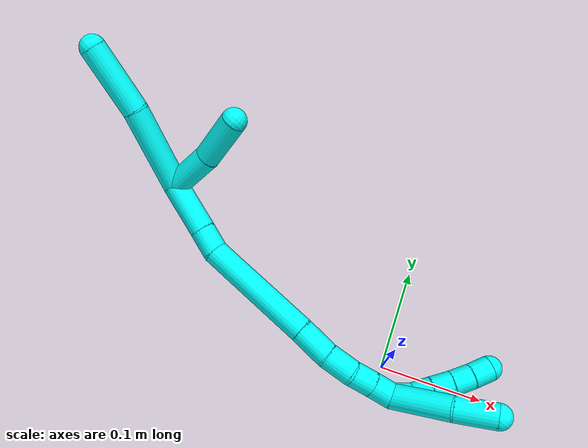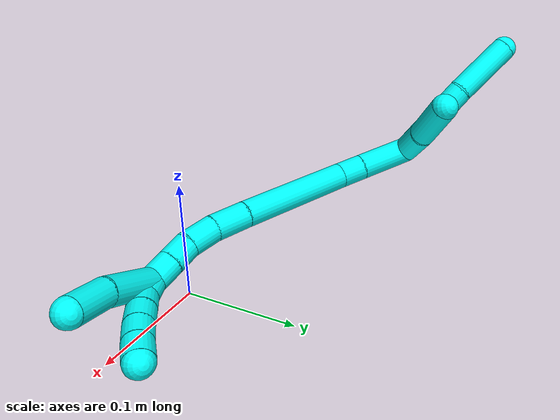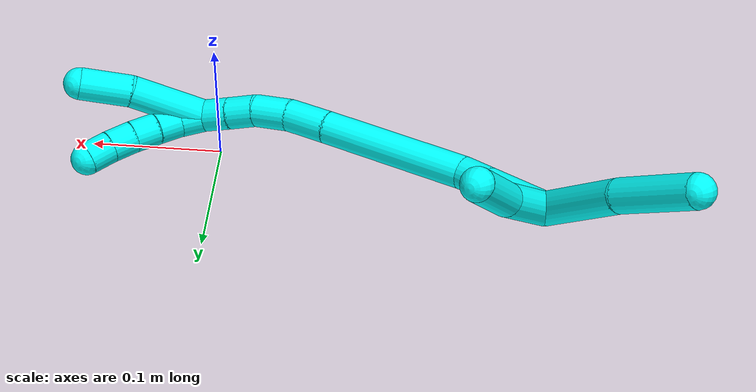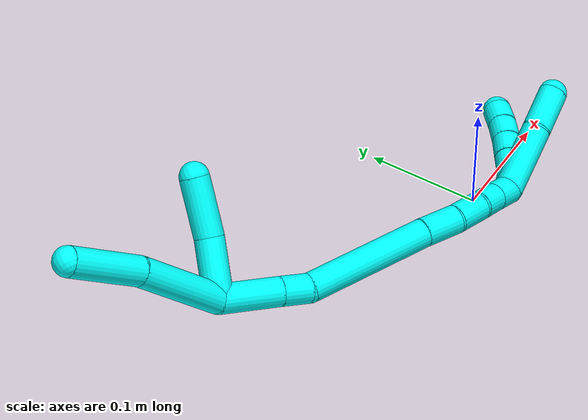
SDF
<sdf version="1.7">
 <world name="default">
  <model name="3">
   <static>0</static>
   <link name="3">
    <collision name="collision-cylinder-e_1_2_8">
     <pose>-0.033645 0.017937 -0.016087 -2.30189 -0.949342 1.71107</pose>
     <geometry><cylinder><radius>0.0125</radius><length>0.082765</length></cylinder></geometry>
     <surface>
      <friction><ode><mu>1.16</mu><mu2>1.16</mu2><slip1>0</slip1><slip2>0</slip2></ode></friction>
      <contact><ode><kp>1e+06</kp><kd>1</kd><max_vel>0</max_vel><min_depth>0.001</min_depth></ode></contact>
     </surface>
    </collision>
    <visual name="visual-cylinder-e_1_2_8">
     <pose>-0.033645 0.017937 -0.016087 -2.30189 -0.949342 1.71107</pose>
     <geometry><cylinder><radius>0.0125</radius><length>0.082765</length></cylinder></geometry>
     <material><ambient>0.003922 1 0.996078 1</ambient></material>
    </visual>
    <collision name="collision-cylinder-e_2_8_6">
     <pose>-0.097435 0.047722 -0.041176 -2.22054 -1.11224 1.79435</pose>
     <geometry><cylinder><radius>0.0125</radius><length>0.067235</length></cylinder></geometry>
     <surface>
      <friction><ode><mu>1.16</mu><mu2>1.16</mu2><slip1>0</slip1><slip2>0</slip2></ode></friction>
      <contact><ode><kp>1e+06</kp><kd>1</kd><max_vel>0</max_vel><min_depth>0.001</min_depth></ode></contact>
     </surface>
    </collision>
    <visual name="visual-cylinder-e_2_8_6">
     <pose>-0.097435 0.047722 -0.041176 -2.22054 -1.11224 1.79435</pose>
     <geometry><cylinder><radius>0.0125</radius><length>0.067235</length></cylinder></geometry>
     <material><ambient>0.003922 1 0.996078 1</ambient></material>
    </visual>
    <collision name="collision-cylinder-e_1_2_9">
     <pose>0.00453 0.008529 -0.023007 -2.78659 0.182583 -0.943736</pose>
     <geometry><cylinder><radius>0.0125</radius><length>0.049903</length></cylinder></geometry>
     <surface>
      <friction><ode><mu>1.16</mu><mu2>1.16</mu2><slip1>0</slip1><slip2>0</slip2></ode></friction>
      <contact><ode><kp>1e+06</kp><kd>1</kd><max_vel>0</max_vel><min_depth>0.001</min_depth></ode></contact>
     </surface>
    </collision>
    <visual name="visual-cylinder-e_1_2_9">
     <pose>0.00453 0.008529 -0.023007 -2.78659 0.182583 -0.943736</pose>
     <geometry><cylinder><radius>0.0125</radius><length>0.049903</length></cylinder></geometry>
     <material><ambient>0.003922 1 0.996078 1</ambient></material>
    </visual>
    <collision name="collision-cylinder-e_2_9_5">
     <pose>0.009825 0.028223 -0.068423 -2.67936 0.030501 -0.129444</pose>
     <geometry><cylinder><radius>0.0125</radius><length>0.050097</length></cylinder></geometry>
     <surface>
      <friction><ode><mu>1.16</mu><mu2>1.16</mu2><slip1>0</slip1><slip2>0</slip2></ode></friction>
      <contact><ode><kp>1e+06</kp><kd>1</kd><max_vel>0</max_vel><min_depth>0.001</min_depth></ode></contact>
     </surface>
    </collision>
    <visual name="visual-cylinder-e_2_9_5">
     <pose>0.009825 0.028223 -0.068423 -2.67936 0.030501 -0.129444</pose>
     <geometry><cylinder><radius>0.0125</radius><length>0.050097</length></cylinder></geometry>
     <material><ambient>0.003922 1 0.996078 1</ambient></material>
    </visual>
    <collision name="collision-cylinder-e_1_2_10">
     <pose>0.025744 0.001175 0.006056 -0.191621 1.3356 -0.151302</pose>
     <geometry><cylinder><radius>0.0125</radius><length>0.052947</length></cylinder></geometry>
     <surface>
      <friction><ode><mu>1.16</mu><mu2>1.16</mu2><slip1>0</slip1><slip2>0</slip2></ode></friction>
      <contact><ode><kp>1e+06</kp><kd>1</kd><max_vel>0</max_vel><min_depth>0.001</min_depth></ode></contact>
     </surface>
    </collision>
    <visual name="visual-cylinder-e_1_2_10">
     <pose>0.025744 0.001175 0.006056 -0.191621 1.3356 -0.151302</pose>
     <geometry><cylinder><radius>0.0125</radius><length>0.052947</length></cylinder></geometry>
     <material><ambient>0.003922 1 0.996078 1</ambient></material>
    </visual>
    <collision name="collision-cylinder-e_2_10_11">
     <pose>0.063617 0.002851 0.015112 -0.165504 1.32509 -0.12924</pose>
     <geometry><cylinder><radius>0.0125</radius><length>0.025007</length></cylinder></geometry>
     <surface>
      <friction><ode><mu>1.16</mu><mu2>1.16</mu2><slip1>0</slip1><slip2>0</slip2></ode></friction>
      <contact><ode><kp>1e+06</kp><kd>1</kd><max_vel>0</max_vel><min_depth>0.001</min_depth></ode></contact>
     </surface>
    </collision>
    <visual name="visual-cylinder-e_2_10_11">
     <pose>0.063617 0.002851 0.015112 -0.165504 1.32509 -0.12924</pose>
     <geometry><cylinder><radius>0.0125</radius><length>0.025007</length></cylinder></geometry>
     <material><ambient>0.003922 1 0.996078 1</ambient></material>
    </visual>
    <collision name="collision-cylinder-e_3_11_12">
     <pose>0.1327 0.008386 0.013889 -2.26877 1.45593 -2.17735</pose>
     <geometry><cylinder><radius>0.0125</radius><length>0.114667</length></cylinder></geometry>
     <surface>
      <friction><ode><mu>1.16</mu><mu2>1.16</mu2><slip1>0</slip1><slip2>0</slip2></ode></friction>
      <contact><ode><kp>1e+06</kp><kd>1</kd><max_vel>0</max_vel><min_depth>0.001</min_depth></ode></contact>
     </surface>
    </collision>
    <visual name="visual-cylinder-e_3_11_12">
     <pose>0.1327 0.008386 0.013889 -2.26877 1.45593 -2.17735</pose>
     <geometry><cylinder><radius>0.0125</radius><length>0.114667</length></cylinder></geometry>
     <material><ambient>0.003922 1 0.996078 1</ambient></material>
    </visual>
    <collision name="collision-cylinder-e_4_12_13">
     <pose>0.206451 0.014435 0.009131 -2.05652 1.50259 -1.99522</pose>
     <geometry><cylinder><radius>0.0125</radius><length>0.033667</length></cylinder></geometry>
     <surface>
      <friction><ode><mu>1.16</mu><mu2>1.16</mu2><slip1>0</slip1><slip2>0</slip2></ode></friction>
      <contact><ode><kp>1e+06</kp><kd>1</kd><max_vel>0</max_vel><min_depth>0.001</min_depth></ode></contact>
     </surface>
    </collision>
    <visual name="visual-cylinder-e_4_12_13">
     <pose>0.206451 0.014435 0.009131 -2.05652 1.50259 -1.99522</pose>
     <geometry><cylinder><radius>0.0125</radius><length>0.033667</length></cylinder></geometry>
     <material><ambient>0.003922 1 0.996078 1</ambient></material>
    </visual>
    <collision name="collision-cylinder-e_5_13_14">
     <pose>0.237314 0.014579 0.006371 2.76816 1.40261 2.70145</pose>
     <geometry><cylinder><radius>0.0125</radius><length>0.02854</length></cylinder></geometry>
     <surface>
      <friction><ode><mu>1.16</mu><mu2>1.16</mu2><slip1>0</slip1><slip2>0</slip2></ode></friction>
      <contact><ode><kp>1e+06</kp><kd>1</kd><max_vel>0</max_vel><min_depth>0.001</min_depth></ode></contact>
     </surface>
    </collision>
    <visual name="visual-cylinder-e_5_13_14">
     <pose>0.237314 0.014579 0.006371 2.76816 1.40261 2.70145</pose>
     <geometry><cylinder><radius>0.0125</radius><length>0.02854</length></cylinder></geometry>
     <material><ambient>0.003922 1 0.996078 1</ambient></material>
    </visual>
    <collision name="collision-cylinder-e_6_14_15">
     <pose>0.2618 0.010684 0.001846 2.22132 1.22111 1.90905</pose>
     <geometry><cylinder><radius>0.0125</radius><length>0.022177</length></cylinder></geometry>
     <surface>
      <friction><ode><mu>1.16</mu><mu2>1.16</mu2><slip1>0</slip1><slip2>0</slip2></ode></friction>
      <contact><ode><kp>1e+06</kp><kd>1</kd><max_vel>0</max_vel><min_depth>0.001</min_depth></ode></contact>
     </surface>
    </collision>
    <visual name="visual-cylinder-e_6_14_15">
     <pose>0.2618 0.010684 0.001846 2.22132 1.22111 1.90905</pose>
     <geometry><cylinder><radius>0.0125</radius><length>0.022177</length></cylinder></geometry>
     <material><ambient>0.003922 1 0.996078 1</ambient></material>
    </visual>
    <collision name="collision-cylinder-e_7_15_1">
     <pose>0.283101 0.004609 -0.002558 2.17415 1.24257 1.87538</pose>
     <geometry><cylinder><radius>0.0125</radius><length>0.022995</length></cylinder></geometry>
     <surface>
      <friction><ode><mu>1.16</mu><mu2>1.16</mu2><slip1>0</slip1><slip2>0</slip2></ode></friction>
      <contact><ode><kp>1e+06</kp><kd>1</kd><max_vel>0</max_vel><min_depth>0.001</min_depth></ode></contact>
     </surface>
    </collision>
    <visual name="visual-cylinder-e_7_15_1">
     <pose>0.283101 0.004609 -0.002558 2.17415 1.24257 1.87538</pose>
     <geometry><cylinder><radius>0.0125</radius><length>0.022995</length></cylinder></geometry>
     <material><ambient>0.003922 1 0.996078 1</ambient></material>
    </visual>
    <collision name="collision-cylinder-e_1_1_16">
     <pose>0.31585 0.010532 -0.023102 -2.68863 0.81738 -2.16361</pose>
     <geometry><cylinder><radius>0.0125</radius><length>0.059957</length></cylinder></geometry>
     <surface>
      <friction><ode><mu>1.16</mu><mu2>1.16</mu2><slip1>0</slip1><slip2>0</slip2></ode></friction>
      <contact><ode><kp>1e+06</kp><kd>1</kd><max_vel>0</max_vel><min_depth>0.001</min_depth></ode></contact>
     </surface>
    </collision>
    <visual name="visual-cylinder-e_1_1_16">
     <pose>0.31585 0.010532 -0.023102 -2.68863 0.81738 -2.16361</pose>
     <geometry><cylinder><radius>0.0125</radius><length>0.059957</length></cylinder></geometry>
     <material><ambient>0.003922 1 0.996078 1</ambient></material>
    </visual>
    <collision name="collision-cylinder-e_2_16_4">
     <pose>0.353191 0.021768 -0.054042 -2.96271 0.883554 -2.76681</pose>
     <geometry><cylinder><radius>0.0125</radius><length>0.040043</length></cylinder></geometry>
     <surface>
      <friction><ode><mu>1.16</mu><mu2>1.16</mu2><slip1>0</slip1><slip2>0</slip2></ode></friction>
      <contact><ode><kp>1e+06</kp><kd>1</kd><max_vel>0</max_vel><min_depth>0.001</min_depth></ode></contact>
     </surface>
    </collision>
    <visual name="visual-cylinder-e_2_16_4">
     <pose>0.353191 0.021768 -0.054042 -2.96271 0.883554 -2.76681</pose>
     <geometry><cylinder><radius>0.0125</radius><length>0.040043</length></cylinder></geometry>
     <material><ambient>0.003922 1 0.996078 1</ambient></material>
    </visual>
    <collision name="collision-cylinder-e_1_1_17">
     <pose>0.301112 -0.000983 -0.011199 2.77114 0.793324 2.30031</pose>
     <geometry><cylinder><radius>0.0125</radius><length>0.02</length></cylinder></geometry>
     <surface>
      <friction><ode><mu>1.16</mu><mu2>1.16</mu2><slip1>0</slip1><slip2>0</slip2></ode></friction>
      <contact><ode><kp>1e+06</kp><kd>1</kd><max_vel>0</max_vel><min_depth>0.001</min_depth></ode></contact>
     </surface>
    </collision>
    <visual name="visual-cylinder-e_1_1_17">
     <pose>0.301112 -0.000983 -0.011199 2.77114 0.793324 2.30031</pose>
     <geometry><cylinder><radius>0.0125</radius><length>0.02</length></cylinder></geometry>
     <material><ambient>0.003922 1 0.996078 1</ambient></material>
    </visual>
    <collision name="collision-cylinder-e_2_17_18">
     <pose>0.31282 -0.00572 -0.026352 2.89177 0.475842 2.18609</pose>
     <geometry><cylinder><radius>0.0125</radius><length>0.02</length></cylinder></geometry>
     <surface>
      <friction><ode><mu>1.16</mu><mu2>1.16</mu2><slip1>0</slip1><slip2>0</slip2></ode></friction>
      <contact><ode><kp>1e+06</kp><kd>1</kd><max_vel>0</max_vel><min_depth>0.001</min_depth></ode></contact>
     </surface>
    </collision>
    <visual name="visual-cylinder-e_2_17_18">
     <pose>0.31282 -0.00572 -0.026352 2.89177 0.475842 2.18609</pose>
     <geometry><cylinder><radius>0.0125</radius><length>0.02</length></cylinder></geometry>
     <material><ambient>0.003922 1 0.996078 1</ambient></material>
    </visual>
    <collision name="collision-cylinder-e_3_18_19">
     <pose>0.322275 -0.010446 -0.043322 2.84787 0.509166 2.10779</pose>
     <geometry><cylinder><radius>0.0125</radius><length>0.02</length></cylinder></geometry>
     <surface>
      <friction><ode><mu>1.16</mu><mu2>1.16</mu2><slip1>0</slip1><slip2>0</slip2></ode></friction>
      <contact><ode><kp>1e+06</kp><kd>1</kd><max_vel>0</max_vel><min_depth>0.001</min_depth></ode></contact>
     </surface>
    </collision>
    <visual name="visual-cylinder-e_3_18_19">
     <pose>0.322275 -0.010446 -0.043322 2.84787 0.509166 2.10779</pose>
     <geometry><cylinder><radius>0.0125</radius><length>0.02</length></cylinder></geometry>
     <material><ambient>0.003922 1 0.996078 1</ambient></material>
    </visual>
    <collision name="collision-cylinder-e_4_19_20">
     <pose>0.331494 -0.016033 -0.060151 2.79501 0.44948 1.83461</pose>
     <geometry><cylinder><radius>0.0125</radius><length>0.02</length></cylinder></geometry>
     <surface>
      <friction><ode><mu>1.16</mu><mu2>1.16</mu2><slip1>0</slip1><slip2>0</slip2></ode></friction>
      <contact><ode><kp>1e+06</kp><kd>1</kd><max_vel>0</max_vel><min_depth>0.001</min_depth></ode></contact>
     </surface>
    </collision>
    <visual name="visual-cylinder-e_4_19_20">
     <pose>0.331494 -0.016033 -0.060151 2.79501 0.44948 1.83461</pose>
     <geometry><cylinder><radius>0.0125</radius><length>0.02</length></cylinder></geometry>
     <material><ambient>0.003922 1 0.996078 1</ambient></material>
    </visual>
    <collision name="collision-cylinder-e_5_20_3">
     <pose>0.339681 -0.022717 -0.077114 2.7382 0.394323 1.54745</pose>
     <geometry><cylinder><radius>0.0125</radius><length>0.02</length></cylinder></geometry>
     <surface>
      <friction><ode><mu>1.16</mu><mu2>1.16</mu2><slip1>0</slip1><slip2>0</slip2></ode></friction>
      <contact><ode><kp>1e+06</kp><kd>1</kd><max_vel>0</max_vel><min_depth>0.001</min_depth></ode></contact>
     </surface>
    </collision>
    <visual name="visual-cylinder-e_5_20_3">
     <pose>0.339681 -0.022717 -0.077114 2.7382 0.394323 1.54745</pose>
     <geometry><cylinder><radius>0.0125</radius><length>0.02</length></cylinder></geometry>
     <material><ambient>0.003922 1 0.996078 1</ambient></material>
    </visual>
    <collision name="collision-sphere-3">
     <pose>0.343523 -0.026341 -0.085605 0 -0 0</pose>
     <geometry><sphere><radius>0.0125</radius></sphere></geometry>
     <surface>
      <friction><ode><mu>1.16</mu><mu2>1.16</mu2><slip1>0</slip1><slip2>0</slip2></ode></friction>
      <contact><ode><kp>1e+06</kp><kd>1</kd><max_vel>0</max_vel><min_depth>0.001</min_depth></ode></contact>
     </surface>
    </collision>
    <visual name="visual-sphere-3">
     <pose>0.343523 -0.026341 -0.085605 0 -0 0</pose>
     <geometry><sphere><radius>0.0125</radius></sphere></geometry>
     <material><ambient>0.003922 1 0.996078 1</ambient></material>
    </visual>
    <collision name="collision-sphere-20">
     <pose>0.335839 -0.019092 -0.068622 0 -0 0</pose>
     <geometry><sphere><radius>0.0125</radius></sphere></geometry>
     <surface>
      <friction><ode><mu>1.16</mu><mu2>1.16</mu2><slip1>0</slip1><slip2>0</slip2></ode></friction>
      <contact><ode><kp>1e+06</kp><kd>1</kd><max_vel>0</max_vel><min_depth>0.001</min_depth></ode></contact>
     </surface>
    </collision>
    <visual name="visual-sphere-20">
     <pose>0.335839 -0.019092 -0.068622 0 -0 0</pose>
     <geometry><sphere><radius>0.0125</radius></sphere></geometry>
     <material><ambient>0.003922 1 0.996078 1</ambient></material>
    </visual>
    <collision name="collision-sphere-19">
     <pose>0.327149 -0.012974 -0.05168 0 -0 0</pose>
     <geometry><sphere><radius>0.0125</radius></sphere></geometry>
     <surface>
      <friction><ode><mu>1.16</mu><mu2>1.16</mu2><slip1>0</slip1><slip2>0</slip2></ode></friction>
      <contact><ode><kp>1e+06</kp><kd>1</kd><max_vel>0</max_vel><min_depth>0.001</min_depth></ode></contact>
     </surface>
    </collision>
    <visual name="visual-sphere-19">
     <pose>0.327149 -0.012974 -0.05168 0 -0 0</pose>
     <geometry><sphere><radius>0.0125</radius></sphere></geometry>
     <material><ambient>0.003922 1 0.996078 1</ambient></material>
    </visual>
    <collision name="collision-sphere-10">
     <pose>0.051489 0.00235 0.012113 0 -0 0</pose>
     <geometry><sphere><radius>0.0125</radius></sphere></geometry>
     <surface>
      <friction><ode><mu>1.16</mu><mu2>1.16</mu2><slip1>0</slip1><slip2>0</slip2></ode></friction>
      <contact><ode><kp>1e+06</kp><kd>1</kd><max_vel>0</max_vel><min_depth>0.001</min_depth></ode></contact>
     </surface>
    </collision>
    <visual name="visual-sphere-10">
     <pose>0.051489 0.00235 0.012113 0 -0 0</pose>
     <geometry><sphere><radius>0.0125</radius></sphere></geometry>
     <material><ambient>0.003922 1 0.996078 1</ambient></material>
    </visual>
    <collision name="collision-sphere-5">
     <pose>0.010589 0.039388 -0.090832 0 -0 0</pose>
     <geometry><sphere><radius>0.0125</radius></sphere></geometry>
     <surface>
      <friction><ode><mu>1.16</mu><mu2>1.16</mu2><slip1>0</slip1><slip2>0</slip2></ode></friction>
      <contact><ode><kp>1e+06</kp><kd>1</kd><max_vel>0</max_vel><min_depth>0.001</min_depth></ode></contact>
     </surface>
    </collision>
    <visual name="visual-sphere-5">
     <pose>0.010589 0.039388 -0.090832 0 -0 0</pose>
     <geometry><sphere><radius>0.0125</radius></sphere></geometry>
     <material><ambient>0.003922 1 0.996078 1</ambient></material>
    </visual>
    <collision name="collision-sphere-6">
     <pose>-0.12758 0.05957 -0.050179 0 -0 0</pose>
     <geometry><sphere><radius>0.0125</radius></sphere></geometry>
     <surface>
      <friction><ode><mu>1.16</mu><mu2>1.16</mu2><slip1>0</slip1><slip2>0</slip2></ode></friction>
      <contact><ode><kp>1e+06</kp><kd>1</kd><max_vel>0</max_vel><min_depth>0.001</min_depth></ode></contact>
     </surface>
    </collision>
    <visual name="visual-sphere-6">
     <pose>-0.12758 0.05957 -0.050179 0 -0 0</pose>
     <geometry><sphere><radius>0.0125</radius></sphere></geometry>
     <material><ambient>0.003922 1 0.996078 1</ambient></material>
    </visual>
    <collision name="collision-sphere-9">
     <pose>0.009061 0.017058 -0.046013 0 -0 0</pose>
     <geometry><sphere><radius>0.0125</radius></sphere></geometry>
     <surface>
      <friction><ode><mu>1.16</mu><mu2>1.16</mu2><slip1>0</slip1><slip2>0</slip2></ode></friction>
      <contact><ode><kp>1e+06</kp><kd>1</kd><max_vel>0</max_vel><min_depth>0.001</min_depth></ode></contact>
     </surface>
    </collision>
    <visual name="visual-sphere-9">
     <pose>0.009061 0.017058 -0.046013 0 -0 0</pose>
     <geometry><sphere><radius>0.0125</radius></sphere></geometry>
     <material><ambient>0.003922 1 0.996078 1</ambient></material>
    </visual>
    <collision name="collision-sphere-2">
     <geometry><sphere><radius>0.0125</radius></sphere></geometry>
     <surface>
      <friction><ode><mu>1.16</mu><mu2>1.16</mu2><slip1>0</slip1><slip2>0</slip2></ode></friction>
      <contact><ode><kp>1e+06</kp><kd>1</kd><max_vel>0</max_vel><min_depth>0.001</min_depth></ode></contact>
     </surface>
    </collision>
    <visual name="visual-sphere-2">
     <geometry><sphere><radius>0.0125</radius></sphere></geometry>
     <material><ambient>0.003922 1 0.996078 1</ambient></material>
    </visual>
    <collision name="collision-sphere-8">
     <pose>-0.067291 0.035873 -0.032174 0 -0 0</pose>
     <geometry><sphere><radius>0.0125</radius></sphere></geometry>
     <surface>
      <friction><ode><mu>1.16</mu><mu2>1.16</mu2><slip1>0</slip1><slip2>0</slip2></ode></friction>
      <contact><ode><kp>1e+06</kp><kd>1</kd><max_vel>0</max_vel><min_depth>0.001</min_depth></ode></contact>
     </surface>
    </collision>
    <visual name="visual-sphere-8">
     <pose>-0.067291 0.035873 -0.032174 0 -0 0</pose>
     <geometry><sphere><radius>0.0125</radius></sphere></geometry>
     <material><ambient>0.003922 1 0.996078 1</ambient></material>
    </visual>
    <collision name="collision-sphere-11">
     <pose>0.075744 0.003352 0.018112 0 -0 0</pose>
     <geometry><sphere><radius>0.0125</radius></sphere></geometry>
     <surface>
      <friction><ode><mu>1.16</mu><mu2>1.16</mu2><slip1>0</slip1><slip2>0</slip2></ode></friction>
      <contact><ode><kp>1e+06</kp><kd>1</kd><max_vel>0</max_vel><min_depth>0.001</min_depth></ode></contact>
     </surface>
    </collision>
    <visual name="visual-sphere-11">
     <pose>0.075744 0.003352 0.018112 0 -0 0</pose>
     <geometry><sphere><radius>0.0125</radius></sphere></geometry>
     <material><ambient>0.003922 1 0.996078 1</ambient></material>
    </visual>
    <collision name="collision-sphere-12">
     <pose>0.189656 0.013421 0.009666 0 -0 0</pose>
     <geometry><sphere><radius>0.0125</radius></sphere></geometry>
     <surface>
      <friction><ode><mu>1.16</mu><mu2>1.16</mu2><slip1>0</slip1><slip2>0</slip2></ode></friction>
      <contact><ode><kp>1e+06</kp><kd>1</kd><max_vel>0</max_vel><min_depth>0.001</min_depth></ode></contact>
     </surface>
    </collision>
    <visual name="visual-sphere-12">
     <pose>0.189656 0.013421 0.009666 0 -0 0</pose>
     <geometry><sphere><radius>0.0125</radius></sphere></geometry>
     <material><ambient>0.003922 1 0.996078 1</ambient></material>
    </visual>
    <collision name="collision-sphere-13">
     <pose>0.223245 0.01545 0.008595 0 -0 0</pose>
     <geometry><sphere><radius>0.0125</radius></sphere></geometry>
     <surface>
      <friction><ode><mu>1.16</mu><mu2>1.16</mu2><slip1>0</slip1><slip2>0</slip2></ode></friction>
      <contact><ode><kp>1e+06</kp><kd>1</kd><max_vel>0</max_vel><min_depth>0.001</min_depth></ode></contact>
     </surface>
    </collision>
    <visual name="visual-sphere-13">
     <pose>0.223245 0.01545 0.008595 0 -0 0</pose>
     <geometry><sphere><radius>0.0125</radius></sphere></geometry>
     <material><ambient>0.003922 1 0.996078 1</ambient></material>
    </visual>
    <collision name="collision-sphere-14">
     <pose>0.251383 0.013707 0.004147 0 -0 0</pose>
     <geometry><sphere><radius>0.0125</radius></sphere></geometry>
     <surface>
      <friction><ode><mu>1.16</mu><mu2>1.16</mu2><slip1>0</slip1><slip2>0</slip2></ode></friction>
      <contact><ode><kp>1e+06</kp><kd>1</kd><max_vel>0</max_vel><min_depth>0.001</min_depth></ode></contact>
     </surface>
    </collision>
    <visual name="visual-sphere-14">
     <pose>0.251383 0.013707 0.004147 0 -0 0</pose>
     <geometry><sphere><radius>0.0125</radius></sphere></geometry>
     <material><ambient>0.003922 1 0.996078 1</ambient></material>
    </visual>
    <collision name="collision-sphere-15">
     <pose>0.272218 0.007661 -0.000455 0 -0 0</pose>
     <geometry><sphere><radius>0.0125</radius></sphere></geometry>
     <surface>
      <friction><ode><mu>1.16</mu><mu2>1.16</mu2><slip1>0</slip1><slip2>0</slip2></ode></friction>
      <contact><ode><kp>1e+06</kp><kd>1</kd><max_vel>0</max_vel><min_depth>0.001</min_depth></ode></contact>
     </surface>
    </collision>
    <visual name="visual-sphere-15">
     <pose>0.272218 0.007661 -0.000455 0 -0 0</pose>
     <geometry><sphere><radius>0.0125</radius></sphere></geometry>
     <material><ambient>0.003922 1 0.996078 1</ambient></material>
    </visual>
    <collision name="collision-sphere-1">
     <pose>0.293985 0.001557 -0.004661 0 -0 0</pose>
     <geometry><sphere><radius>0.0125</radius></sphere></geometry>
     <surface>
      <friction><ode><mu>1.16</mu><mu2>1.16</mu2><slip1>0</slip1><slip2>0</slip2></ode></friction>
      <contact><ode><kp>1e+06</kp><kd>1</kd><max_vel>0</max_vel><min_depth>0.001</min_depth></ode></contact>
     </surface>
    </collision>
    <visual name="visual-sphere-1">
     <pose>0.293985 0.001557 -0.004661 0 -0 0</pose>
     <geometry><sphere><radius>0.0125</radius></sphere></geometry>
     <material><ambient>0.003922 1 0.996078 1</ambient></material>
    </visual>
    <collision name="collision-sphere-18">
     <pose>0.3174 -0.007918 -0.034965 0 -0 0</pose>
     <geometry><sphere><radius>0.0125</radius></sphere></geometry>
     <surface>
      <friction><ode><mu>1.16</mu><mu2>1.16</mu2><slip1>0</slip1><slip2>0</slip2></ode></friction>
      <contact><ode><kp>1e+06</kp><kd>1</kd><max_vel>0</max_vel><min_depth>0.001</min_depth></ode></contact>
     </surface>
    </collision>
    <visual name="visual-sphere-18">
     <pose>0.3174 -0.007918 -0.034965 0 -0 0</pose>
     <geometry><sphere><radius>0.0125</radius></sphere></geometry>
     <material><ambient>0.003922 1 0.996078 1</ambient></material>
    </visual>
    <collision name="collision-sphere-16">
     <pose>0.337715 0.019508 -0.041542 0 -0 0</pose>
     <geometry><sphere><radius>0.0125</radius></sphere></geometry>
     <surface>
      <friction><ode><mu>1.16</mu><mu2>1.16</mu2><slip1>0</slip1><slip2>0</slip2></ode></friction>
      <contact><ode><kp>1e+06</kp><kd>1</kd><max_vel>0</max_vel><min_depth>0.001</min_depth></ode></contact>
     </surface>
    </collision>
    <visual name="visual-sphere-16">
     <pose>0.337715 0.019508 -0.041542 0 -0 0</pose>
     <geometry><sphere><radius>0.0125</radius></sphere></geometry>
     <material><ambient>0.003922 1 0.996078 1</ambient></material>
    </visual>
    <collision name="collision-sphere-4">
     <pose>0.368668 0.024028 -0.066541 0 -0 0</pose>
     <geometry><sphere><radius>0.0125</radius></sphere></geometry>
     <surface>
      <friction><ode><mu>1.16</mu><mu2>1.16</mu2><slip1>0</slip1><slip2>0</slip2></ode></friction>
      <contact><ode><kp>1e+06</kp><kd>1</kd><max_vel>0</max_vel><min_depth>0.001</min_depth></ode></contact>
     </surface>
    </collision>
    <visual name="visual-sphere-4">
     <pose>0.368668 0.024028 -0.066541 0 -0 0</pose>
     <geometry><sphere><radius>0.0125</radius></sphere></geometry>
     <material><ambient>0.003922 1 0.996078 1</ambient></material>
    </visual>
    <collision name="collision-sphere-17">
     <pose>0.308239 -0.003522 -0.017738 0 -0 0</pose>
     <geometry><sphere><radius>0.0125</radius></sphere></geometry>
     <surface>
      <friction><ode><mu>1.16</mu><mu2>1.16</mu2><slip1>0</slip1><slip2>0</slip2></ode></friction>
      <contact><ode><kp>1e+06</kp><kd>1</kd><max_vel>0</max_vel><min_depth>0.001</min_depth></ode></contact>
     </surface>
    </collision>
    <visual name="visual-sphere-17">
     <pose>0.308239 -0.003522 -0.017738 0 -0 0</pose>
     <geometry><sphere><radius>0.0125</radius></sphere></geometry>
     <material><ambient>0.003922 1 0.996078 1</ambient></material>
    </visual>
    <inertial>
     <pose>0.134427 0.012344 -0.018433 0 -0 0</pose>
     <mass>0.75</mass>
     <inertia>
      <ixx>2.7e-05</ixx>
      <ixy>0</ixy>
      <ixz>0</ixz>
      <iyy>0.000241</iyy>
      <iyz>0</iyz>
      <izz>-0.000197</izz>
     </inertia>
    </inertial>
   </link>
   <pose>-0.248822 0.095636 0.053957 1.97795 0.147528 -0.439935</pose>
  </model>
 </world>
</sdf>
